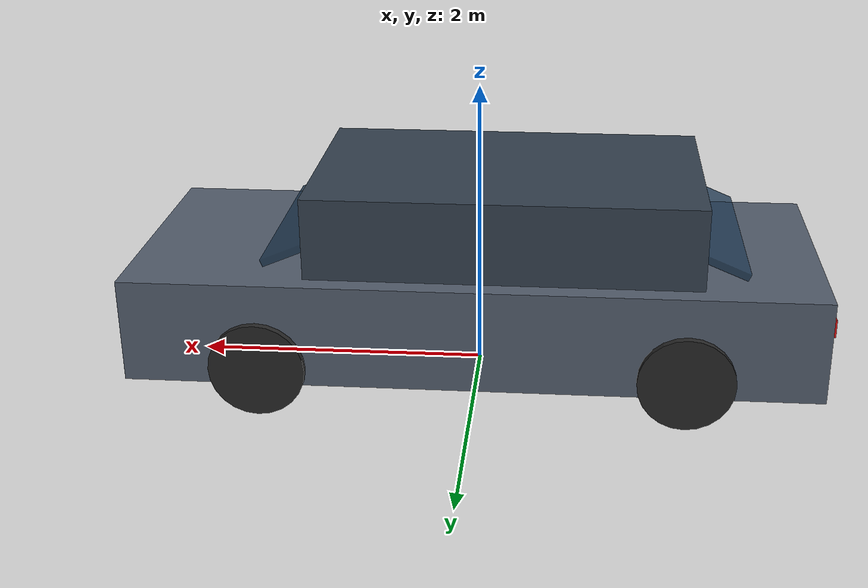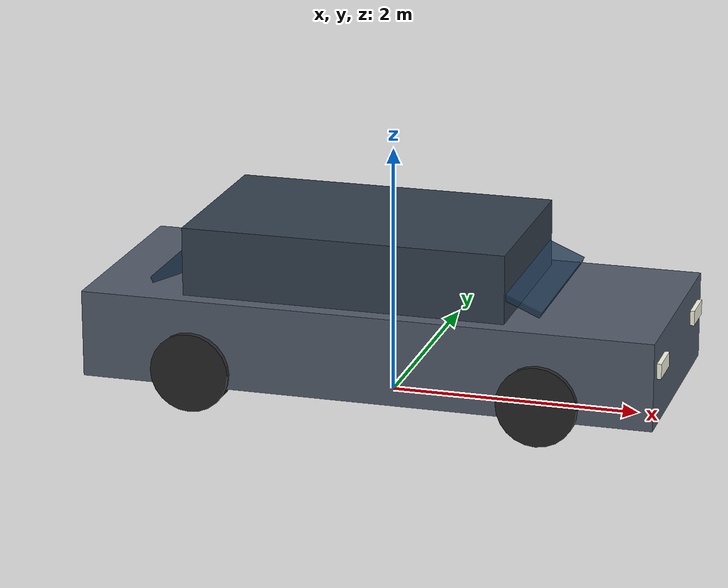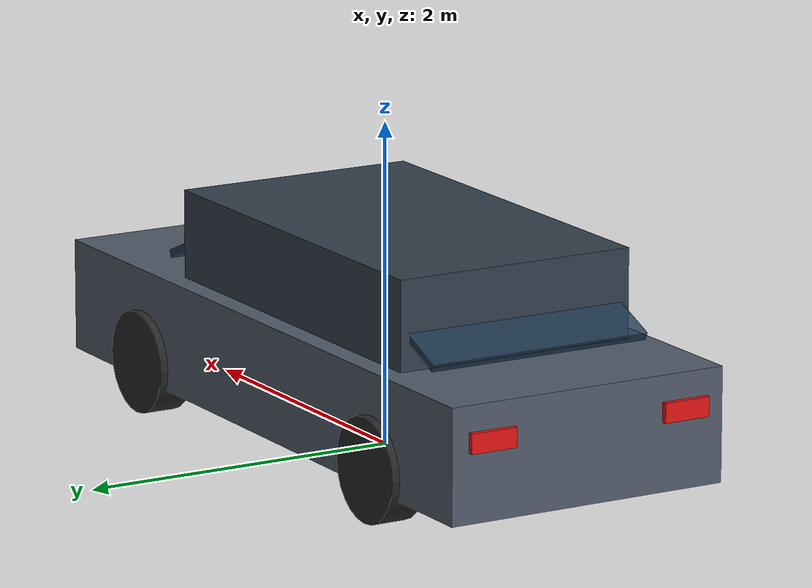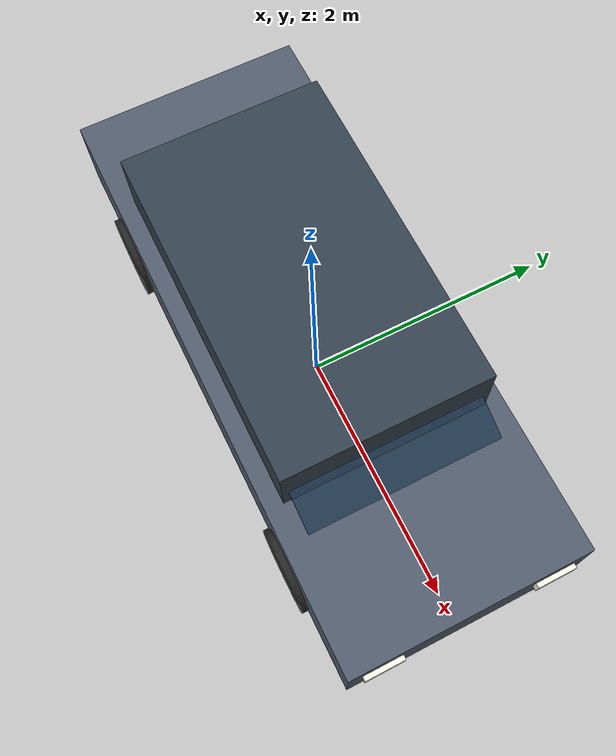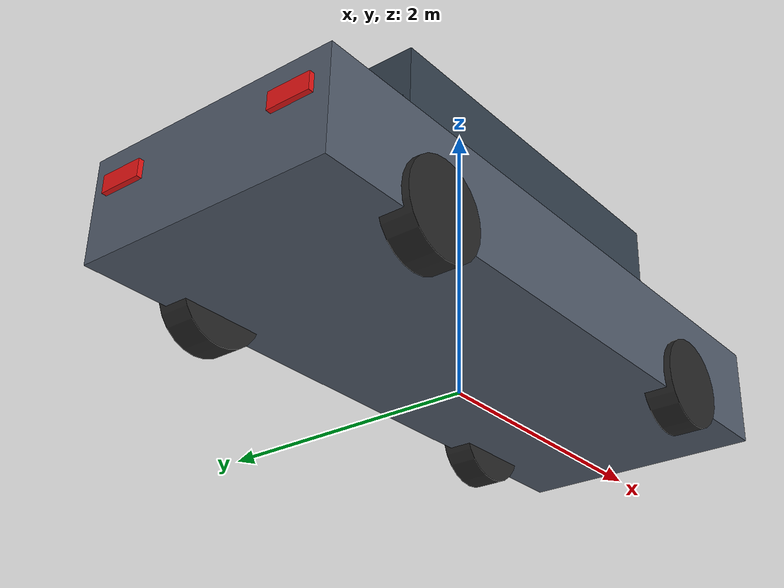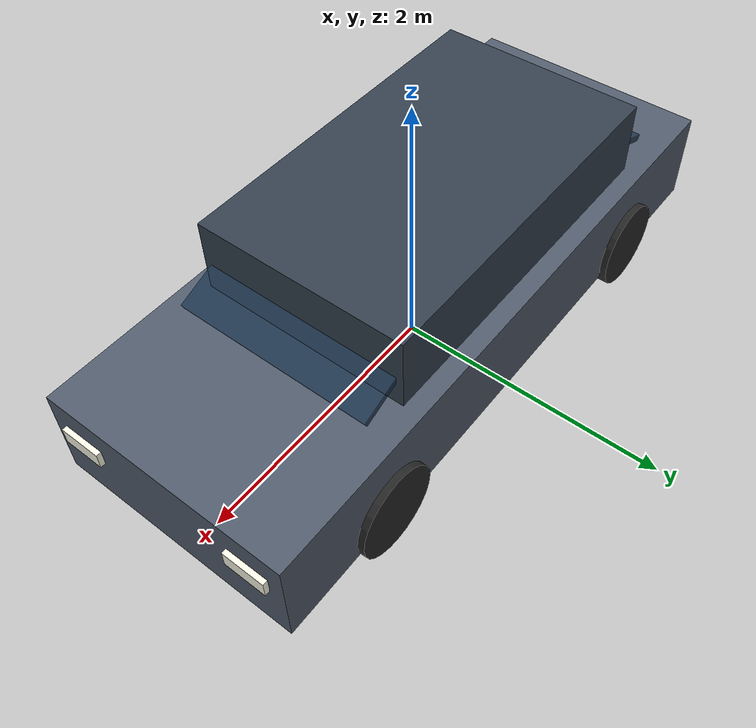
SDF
<?xml version="1.0" ?>
<sdf version="1.8">
  <model name="parked_car_sedan">
    <static>true</static>
    <link name="car_link">

      <!-- 物理碰撞剛體 (單一 Box 幾何) -->
      <collision name="car_col">
        <pose>0 0 0.7 0 0 0</pose>
        <geometry><box><size>4.6 1.82 1.4</size></box></geometry>
      </collision>

      <!-- 視覺：車身主體下部 (Lower Body) -->
      <visual name="body_lower">
        <pose>0 0 0.55 0 0 0</pose>
        <geometry><box><size>4.6 1.82 0.7</size></box></geometry>
        <material><ambient>0.25 0.28 0.32 1</ambient><diffuse>0.32 0.36 0.42 1</diffuse></material>
      </visual>

      <!-- 視覺：車頂駕駛座艙 (Cabin & Roof) -->
      <visual name="cabin">
        <pose>-0.2 0 1.15 0 0 0</pose>
        <geometry><box><size>2.6 1.55 0.6</size></box></geometry>
        <material><ambient>0.15 0.18 0.22 0.9</ambient><diffuse>0.20 0.25 0.30 0.9</diffuse></material>
      </visual>

      <!-- 視覺：前擋風玻璃與後擋風玻璃 (Windshields) -->
      <visual name="front_windshield">
        <pose>1.1 0 1.1 0 0.4 0</pose>
        <geometry><box><size>0.6 1.45 0.05</size></box></geometry>
        <material><ambient>0.1 0.2 0.25 0.85</ambient><diffuse>0.15 0.25 0.35 0.85</diffuse></material>
      </visual>
      <visual name="rear_windshield">
        <pose>-1.5 0 1.1 0 -0.4 0</pose>
        <geometry><box><size>0.6 1.45 0.05</size></box></geometry>
        <material><ambient>0.1 0.2 0.25 0.85</ambient><diffuse>0.15 0.25 0.35 0.85</diffuse></material>
      </visual>

      <!-- 視覺：車輪 (4 Wheels: 半徑 0.32m) -->
      <visual name="wheel_fl"><pose>1.4 0.85 0.32 1.5708 0 0</pose><geometry><cylinder><radius>0.32</radius><length>0.22</length></cylinder></geometry><material><ambient>0.1 0.1 0.1 1</ambient><diffuse>0.15 0.15 0.15 1</diffuse></material></visual>
      <visual name="wheel_fr"><pose>1.4 -0.85 0.32 1.5708 0 0</pose><geometry><cylinder><radius>0.32</radius><length>0.22</length></cylinder></geometry><material><ambient>0.1 0.1 0.1 1</ambient><diffuse>0.15 0.15 0.15 1</diffuse></material></visual>
      <visual name="wheel_rl"><pose>-1.4 0.85 0.32 1.5708 0 0</pose><geometry><cylinder><radius>0.32</radius><length>0.22</length></cylinder></geometry><material><ambient>0.1 0.1 0.1 1</ambient><diffuse>0.15 0.15 0.15 1</diffuse></material></visual>
      <visual name="wheel_rr"><pose>-1.4 -0.85 0.32 1.5708 0 0</pose><geometry><cylinder><radius>0.32</radius><length>0.22</length></cylinder></geometry><material><ambient>0.1 0.1 0.1 1</ambient><diffuse>0.15 0.15 0.15 1</diffuse></material></visual>

      <!-- 視覺：車頭燈與車尾燈 (Headlights & Taillights) -->
      <visual name="headlight_l"><pose>2.31 0.65 0.65 0 0 0</pose><geometry><box><size>0.05 0.3 0.12</size></box></geometry><material><ambient>0.9 0.9 0.8 1</ambient><diffuse>0.98 0.98 0.9 1</diffuse><emissive>0.3 0.3 0.25 1</emissive></material></visual>
      <visual name="headlight_r"><pose>2.31 -0.65 0.65 0 0 0</pose><geometry><box><size>0.05 0.3 0.12</size></box></geometry><material><ambient>0.9 0.9 0.8 1</ambient><diffuse>0.98 0.98 0.9 1</diffuse><emissive>0.3 0.3 0.25 1</emissive></material></visual>
      <visual name="taillight_l"><pose>-2.31 0.65 0.68 0 0 0</pose><geometry><box><size>0.05 0.3 0.12</size></box></geometry><material><ambient>0.8 0.05 0.05 1</ambient><diffuse>0.9 0.08 0.08 1</diffuse><emissive>0.2 0.02 0.02 1</emissive></material></visual>
      <visual name="taillight_r"><pose>-2.31 -0.65 0.68 0 0 0</pose><geometry><box><size>0.05 0.3 0.12</size></box></geometry><material><ambient>0.8 0.05 0.05 1</ambient><diffuse>0.9 0.08 0.08 1</diffuse><emissive>0.2 0.02 0.02 1</emissive></material></visual>
    </link>
  </model>
</sdf>
